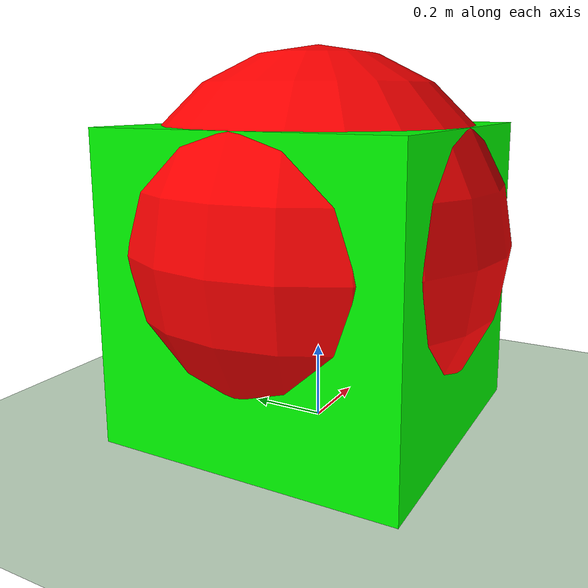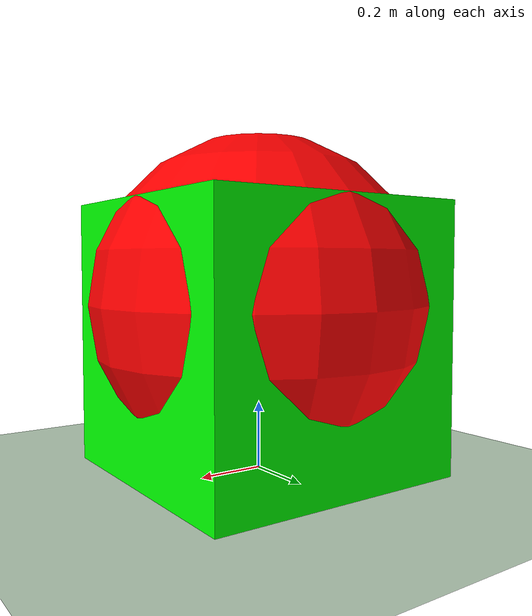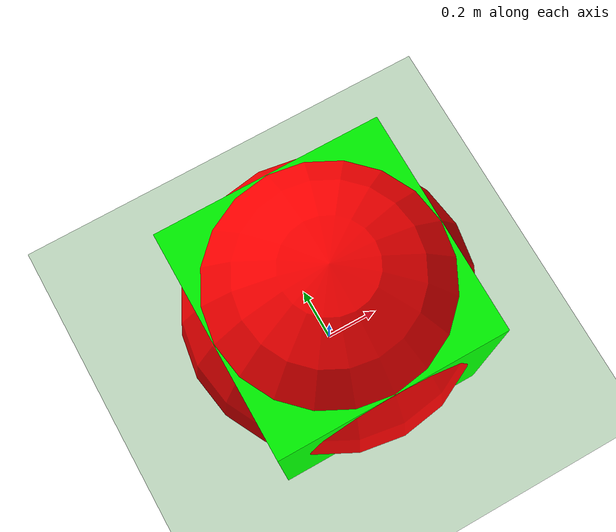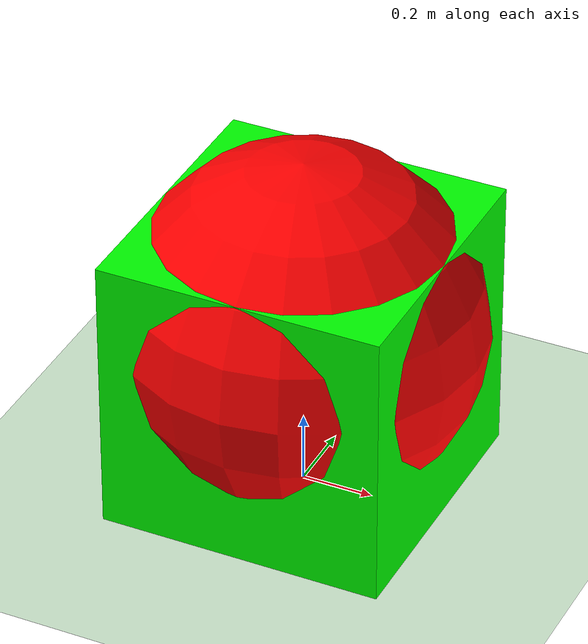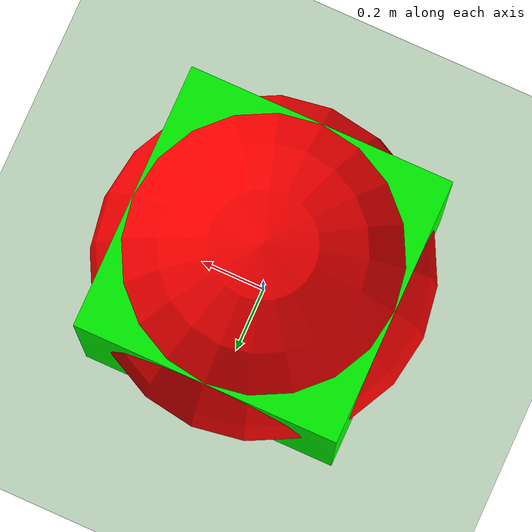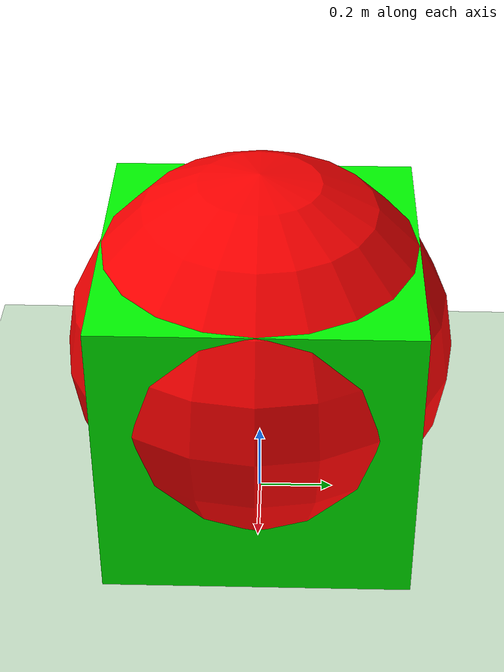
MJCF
<mujoco>
  <compiler inertiafromgeom="true" angle="degree" coordinate="local" />
  <option timestep="0.1" integrator="RK4" />
  <default>
    <joint limited="false" armature="0" damping="0" />
    <geom condim="3" conaffinity="0" margin="0" friction="1 0.5 0.5" rgba="0.8 0.6 0.4 1" density="100" />
  </default>
  <asset>
    <texture type="skybox" builtin="gradient" width="100" height="100" rgb1="1 1 1" rgb2="0 0 0" />
    <texture name="texgeom" type="cube" builtin="flat" mark="cross" width="127" height="1278" rgb1="0.8 0.6 0.4" rgb2="0.8 0.6 0.4" markrgb="1 1 1" random="0.01" />
    <texture name="texplane" type="2d" builtin="checker" rgb1="0 0 0" rgb2="0.8 0.8 0.8" width="100" height="100" />
    <material name='MatPlane' texture="texplane" shininess="1" texrepeat="30 30" specular="1"  reflectance="0.5" />
    <material name='geom' texture="texgeom" texuniform="true" />
    <material name="MatGnd" specular="0" shininess="0" reflectance="0" rgba='1 1 1 1'/>
  </asset>
  <worldbody>
    <camera name="main" pos="0 0 5" euler="0 0 0" fovy="65" />
    <light directional="true" cutoff="100" exponent="1" diffuse="1 1 1" specular=".1 .1 .1" pos="0 0 1.3" dir="-0 0 -1.3" />
    <!--geom name="gnd" material="MatGnd" type="plane" contype="0" conaffinity="0" pos="0 0 0" size="40 40 40"/-->
    <geom name='floor' material="MatPlane" pos='0 0 0' size='40 40 40' type='plane' conaffinity='1' rgba='0.8 0.9 0.8 1' condim='3' />
    <body name="torso" pos="0 0 0">
      <geom name="pointbody" type="sphere" size="0.2" pos="0 0 0.2" />
      <joint name='ballx' type='slide' axis='1 0 0' pos='0 0 0' damping="15"/>
      <joint name='bally' type='slide' axis='0 1 0' pos='0 0 0' damping="15"/>
    </body>
    <body name="dis1" pos="0 0 0">
      <geom name="dis1_geom" type="box" size="0.4 0.4 0.4" pos="0 0 0.4" rgba="0 1 0 1"/>
      <joint name='dis1x' type='slide' axis='1 0 0' pos='0 0 0' damping="15"/>
      <joint name='dis1y' type='slide' axis='0 1 0' pos='0 0 0' damping="15"/>
    </body>
    <body name="dis2" pos="0 0 0">
      <geom name="dis2_geom" type="sphere" size="0.5" pos="0 0 0.5" rgba="1 0 0 1" />
      <joint name='dis2x' type='slide' axis='1 0 0' pos='0 0 0' damping="15"/>
      <joint name='dis2y' type='slide' axis='0 1 0' pos='0 0 0' damping="15"/>
    </body>
  </worldbody>
  <actuator>
    <!-- Those are just dummy actuators for providing ranges -->
    <position joint='ballx' ctrlrange="-20 20" ctrllimited="true" kp="150"/>
    <position joint='bally' ctrlrange ="-20 20" ctrllimited="true" kp="150"/>
  </actuator>
</mujoco>
